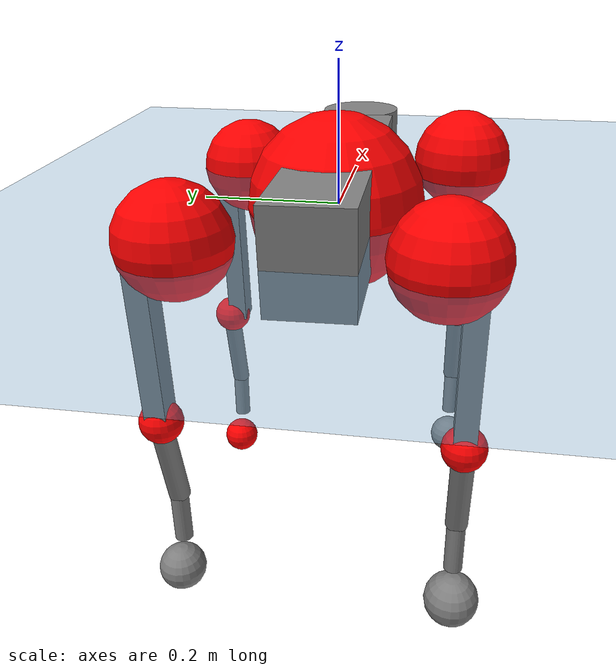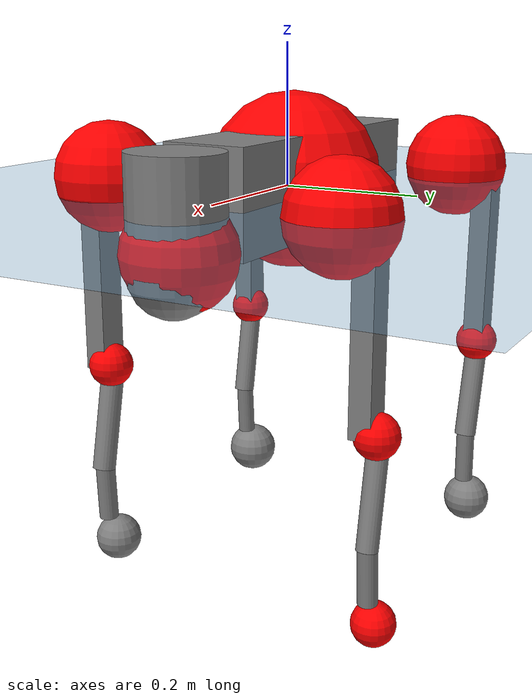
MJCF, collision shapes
<mujoco model="go2">
  <compiler angle="radian" assetdir="assets" balanceinertia="true" inertiafromgeom="false"/>

  <option timestep="0.005" density="1.2" viscosity="2e-05"/>

  <size nkey="1"/>

  <visual>
    <quality shadowsize="8192"/>
    <map shadowclip="0.5"/>
  </visual>

  <default>
    <default class="/">
      <geom contype="0" conaffinity="0" group="1" solref="-1000 -80"/>
      <site size="0.01 0.005 0.005" group="5"/>
      <general forcelimited="true" biastype="affine" gainprm="20" biasprm="0 -20 -0.5"/>
      <default class="go2">
        <joint armature="0.01" damping="0.01" frictionloss="0.2"/>
        <geom condim="1" margin="0.001"/>
        <default class="visual">
          <geom type="mesh" group="2"/>
        </default>
        <default class="collision">
          <geom group="3"/>
          <default class="foot">
            <geom size="0.022 0 0" condim="6" priority="1" friction="0.8 0.02 0.01" solimp="0.015 1 0.022"/>
          </default>
        </default>
        <default class="reward_collision_sphere">
          <geom group="5" rgba="1 0 0 1"/>
        </default>
      </default>
    </default>
  </default>

  <asset>
    <texture type="skybox" colorspace="auto" name="//unnamed_texture_0" builtin="gradient" rgb1="0.95 0.95 0.95" rgb2="0.95 0.95 0.95" width="100" height="600"/>
    <texture type="2d" colorspace="auto" name="texplane" builtin="checker" rgb1="0.345 0.575 0.748" rgb2="0.345 0.575 0.748" markrgb="1 1 1" width="512" height="512"/>
    <material name="MatPlane" class="/" texture="texplane" texuniform="true" texrepeat="2 2" specular="0.9"/>
    <material name="metal" class="/" rgba="0.9 0.95 0.95 1"/>
    <material name="black" class="/" rgba="0 0 0 1"/>
    <material name="white" class="/"/>
    <material name="gray" class="/" rgba="0.671705 0.692426 0.77427 1"/>
    <mesh name="base_0" class="/" file="base_0.obj"/>
    <mesh name="base_1" class="/" file="base_1.obj"/>
    <mesh name="base_2" class="/" file="base_2.obj"/>
    <mesh name="base_3" class="/" file="base_3.obj"/>
    <mesh name="base_4" class="/" file="base_4.obj"/>
    <mesh name="hip_0" class="/" file="hip_0.obj"/>
    <mesh name="hip_1" class="/" file="hip_1.obj"/>
    <mesh name="thigh_0" class="/" file="thigh_0.obj"/>
    <mesh name="thigh_1" class="/" file="thigh_1.obj"/>
    <mesh name="thigh_mirror_0" class="/" file="thigh_mirror_0.obj"/>
    <mesh name="thigh_mirror_1" class="/" file="thigh_mirror_1.obj"/>
    <mesh name="calf_0" class="/" file="calf_0.obj"/>
    <mesh name="calf_1" class="/" file="calf_1.obj"/>
    <mesh name="calf_mirror_0" class="/" file="calf_mirror_0.obj"/>
    <mesh name="calf_mirror_1" class="/" file="calf_mirror_1.obj"/>
    <mesh name="foot" class="/" file="foot.obj"/>
  </asset>

  <worldbody>
    <geom name="floor" class="/" size="100 100 0.125" type="plane" group="0" material="MatPlane"/>
    <light name="toplight_shadow" class="/" pos="0 0 5" dir="0.0990148 0.0990148 -0.990148" type="directional" ambient="0.04 0.04 0.04" diffuse="0.55 0.55 0.55" specular="0.12 0.12 0.12"/>
    <light name="toplight_fill" class="/" pos="0 0 5" dir="0.0990148 0.0990148 -0.990148" type="directional" castshadow="false" ambient="0.04 0.04 0.04" diffuse="0.3 0.3 0.3" specular="0.08 0.08 0.08"/>
    <body name="trunk" childclass="go2" pos="-0.0154448 0.00126105 0.00775208" quat="0.999976 -0.00583246 -0.00111453 0.00369642">
      <inertial pos="0.036724 -0.00742981 -0.00391913" quat="-0.0126824 0.704985 -0.00306447 0.709102" mass="15.4141" diaginertia="0.119654 0.620905 0.0724426"/>
      <joint name="//unnamed_joint_0" type="free" armature="0" damping="0" frictionloss="0"/>
      <geom name="//unnamed_geom_1" class="visual" material="black" mesh="base_0"/>
      <geom name="//unnamed_geom_2" class="visual" material="black" mesh="base_1"/>
      <geom name="//unnamed_geom_3" class="visual" material="black" mesh="base_2"/>
      <geom name="//unnamed_geom_4" class="visual" material="white" mesh="base_3"/>
      <geom name="//unnamed_geom_5" class="visual" material="gray" mesh="base_4"/>
      <geom name="trunk_1" class="collision" size="0.238493 0.0592747 0.0722707" type="box"/>
      <geom name="trunk_2" class="collision" size="0.0633954 0.0570558" pos="0.296895 0 0.0128604" type="cylinder"/>
      <geom name="trunk_3" class="collision" size="0.0595917" pos="0.305229 0 -0.0771625"/>
      <geom name="//unnamed_geom_9" class="reward_collision_sphere" size="0.126791"/>
      <geom name="//unnamed_geom_10" class="reward_collision_sphere" size="0.0760745" pos="0.291686 0 -0.0578719"/>
      <site name="imu" pos="-0.0190359 -0.0433617 -0.0132911" size="0.0126791"/>
      <camera name="track" pos="0 -2.95189 0" quat="0.707107 0.707107 0 0" mode="trackcom"/>
      <camera name="ego_camera" pos="0.325022 0 0.0578719" quat="-0.5 -0.5 0.5 0.5"/>
      <body name="FL_hip" pos="0.201438 0.0736959 -0.00694479" quat="0.999993 -0.00375377 -0.000258984 -0.000265825">
        <inertial pos="-0.00964746 0.0138492 0.00243976" quat="0.504031 0.493036 0.504615 0.498229" mass="1.43889" diaginertia="0.000829602 0.00355034 0.00167794"/>
        <joint name="FL_hip_joint" pos="0 0 0" axis="0.997109 -0.0758729 -0.00422661" stiffness="0.0320423" range="-1.34614 1.08898" armature="0.0134605" damping="0" frictionloss="0.267257"/>
        <geom name="//unnamed_geom_11" class="visual" material="metal" mesh="hip_0"/>
        <geom name="//unnamed_geom_12" class="visual" material="gray" mesh="hip_1"/>
        <geom name="//unnamed_geom_13" class="collision" size="0.0583238 0.0253582" pos="0 0.118076 0" quat="0.707107 0.707107 0 0" type="cylinder"/>
        <geom name="//unnamed_geom_14" class="reward_collision_sphere" size="0.0760745" pos="0 0.103316 0"/>
        <body name="FL_thigh" pos="-0.00807405 0.139261 -0.00882707" quat="0.99998 0.00495661 0.00190398 0.00343359">
          <inertial pos="-0.0146507 -0.0230928 -0.0282356" quat="0.829537 0.0842513 -0.0205778 0.551676" mass="2.70394" diaginertia="0.00746917 0.0457435 0.00281799"/>
          <joint name="FL_thigh_joint" pos="0 0 0" axis="-0.0239015 0.999558 0.0176704" stiffness="0.0786464" range="-1.71947 3.49878" armature="0.0173761" damping="0.00935464" frictionloss="0.330328"/>
          <geom name="//unnamed_geom_15" class="visual" material="metal" mesh="thigh_0"/>
          <geom name="//unnamed_geom_16" class="visual" material="gray" mesh="thigh_1"/>
          <geom name="//unnamed_geom_17" class="collision" size="0.135032 0.0155319 0.0215544" pos="0 0 -0.136963" quat="0.707107 0 0.707107 0" type="box"/>
          <body name="FL_calf" pos="-0.00380879 0.01394 -0.270201" quat="0.999988 0.00342106 0.00339112 4.19651e-05">
            <inertial pos="0.0187354 -0.00163385 -0.192079" quat="0.687294 -0.00264848 -0.00893917 0.726319" mass="0.471603" diaginertia="0.00163617 0.00721334 0.000139993"/>
            <joint name="FL_calf_joint" pos="0 0 0" axis="0.0304216 0.999536 0.00128197" range="-2.44659 -0.857286" armature="0.00784436" damping="0.0735636" frictionloss="0.14702"/>
            <geom name="//unnamed_geom_18" class="visual" material="gray" mesh="calf_0"/>
            <geom name="//unnamed_geom_19" class="visual" material="black" mesh="calf_1"/>
            <geom name="FL_calf0" class="collision" size="0.0152149 0.0760745" pos="0.00833389 0 -0.0771625" quat="0.994493 0 -0.104807 0" type="cylinder"/>
            <geom name="//unnamed_geom_21" class="collision" size="0.013947 0.041207" pos="0.0208347 0 -0.190334" quat="0.999688 0 0.0249974 0" type="cylinder"/>
            <geom name="//unnamed_geom_22" class="visual" pos="0 0 -0.273927" quat="1 0 0 0" material="black" mesh="foot"/>
            <geom name="FL_foot" class="foot" size="0.0205748" pos="-0.00208347 0 -0.273927"/>
            <geom name="//unnamed_geom_24" class="reward_collision_sphere" size="0.0316977"/>
            <geom name="//unnamed_geom_25" class="reward_collision_sphere" size="0.0316977" pos="-0.00208347 0 -0.273927"/>
            <site name="FL_foot" class="foot" pos="-0.00208347 0 -0.273927" size="0.0126791"/>
          </body>
        </body>
      </body>
      <body name="FR_hip" pos="0.199033 -0.0738217 0.0141014" quat="0.999983 0.00130571 -0.00125503 -0.00546777">
        <inertial pos="-0.0139499 0.0102702 -0.00140906" quat="0.510024 0.531558 0.445595 0.508691" mass="1.39288" diaginertia="0.00137411 0.00466107 0.00210816"/>
        <joint name="FR_hip_joint" pos="0 0 0" axis="0.999097 -0.0279047 -0.0320263" stiffness="0.022541" range="-1.16585 1.06541" armature="0.00961578" damping="0.000270604" frictionloss="0.413298"/>
        <geom name="//unnamed_geom_26" class="visual" pos="0 1.65436e-09 7.09589e-08" quat="4.63268e-05 1 0 0" material="metal" mesh="hip_0"/>
        <geom name="//unnamed_geom_27" class="visual" pos="0 2.68192e-09 -1.75509e-07" quat="4.63268e-05 1 0 0" material="gray" mesh="hip_1"/>
        <geom name="//unnamed_geom_28" class="collision" size="0.0583238 0.0253582" pos="0 -0.118076 0" quat="0.707107 0.707107 0 0" type="cylinder"/>
        <geom name="//unnamed_geom_29" class="reward_collision_sphere" size="0.0760745" pos="0 -0.103316 0"/>
        <body name="FR_thigh" pos="-0.000121217 -0.125722 -0.00315338" quat="1 -8.61668e-05 -2.27815e-05 -0.000163917">
          <inertial pos="-0.012699 0.0442968 -0.0402718" quat="0.534598 -0.0329214 0.129607 0.83446" mass="2.27018" diaginertia="0.00819118 0.048172 0.00287236"/>
          <joint name="FR_thigh_joint" pos="0 0 0" axis="0.00310292 -0.999995 -0.000289638" stiffness="0.0450194" range="-3.44337 1.33109" armature="0.0119993" damping="0.0291427" frictionloss="0.160478"/>
          <geom name="//unnamed_geom_30" class="visual" material="metal" mesh="thigh_mirror_0"/>
          <geom name="//unnamed_geom_31" class="visual" material="gray" mesh="thigh_mirror_1"/>
          <geom name="//unnamed_geom_32" class="collision" size="0.135032 0.0155319 0.0215544" pos="0 0 -0.136963" quat="0.707107 0 0.707107 0" type="box"/>
          <body name="FR_calf" pos="0.00216584 0.0118784 -0.268192" quat="1 -0.000306526 -0.000242702 0.000576049">
            <inertial pos="0.00585501 -0.000148319 -0.181679" quat="0.681812 -0.0203221 0.0599197 0.728786" mass="0.500988" diaginertia="0.00182253 0.0104155 0.000214485"/>
            <joint name="FR_calf_joint" pos="0 0 0" axis="0.0467438 -0.99737 -0.0553936" stiffness="0.0640831" range="0.819634 2.5093" armature="0.0165527" damping="0" frictionloss="0.339776"/>
            <geom name="//unnamed_geom_33" class="visual" material="gray" mesh="calf_mirror_0"/>
            <geom name="//unnamed_geom_34" class="visual" material="black" mesh="calf_mirror_1"/>
            <geom name="FR_calf0" class="collision" size="0.0164828 0.0760745" pos="0.0104174 0 -0.0771625" quat="0.995004 0 -0.0998334 0" type="cylinder"/>
            <geom name="//unnamed_geom_36" class="collision" size="0.013947 0.041207" pos="0.0208347 0 -0.190334" quat="0.999688 0 0.0249974 0" type="cylinder"/>
            <geom name="//unnamed_geom_37" class="visual" pos="0 0 -0.273927" quat="1 0 0 0" material="black" mesh="foot"/>
            <geom name="FR_foot" class="foot" size="0.0333439" pos="-0.00208347 0 -0.273927"/>
            <geom name="//unnamed_geom_39" class="reward_collision_sphere" size="0.0316977"/>
            <geom name="//unnamed_geom_40" class="reward_collision_sphere" size="0.0316977" pos="-0.00208347 0 -0.273927"/>
            <site name="FR_foot" class="foot" pos="-0.00208347 0 -0.273927" size="0.0126791"/>
          </body>
        </body>
      </body>
      <body name="RL_hip" pos="-0.202093 0.0695694 0.0111805" quat="1 -0.000150593 0.000339332 0.000388982">
        <inertial pos="-0.000836334 -0.0116297 0.0109442" quat="0.505952 0.556928 0.482508 0.448364" mass="1.07975" diaginertia="0.00100986 0.00397588 0.0013315"/>
        <joint name="RL_hip_joint" pos="0 0 0" axis="-0.999998 -0.00144396 0.00117153" range="-0.99595 1.23206" armature="0.0197799" damping="0.0300141" frictionloss="0.0847645"/>
        <geom name="//unnamed_geom_41" class="visual" pos="2.12829e-09 0 4.17195e-07" quat="4.63268e-05 0 1 0" material="metal" mesh="hip_0"/>
        <geom name="//unnamed_geom_42" class="visual" pos="3.45022e-09 0 3.69992e-07" quat="4.63268e-05 0 1 0" material="gray" mesh="hip_1"/>
        <geom name="//unnamed_geom_43" class="collision" size="0.0583238 0.0253582" pos="0 0.118076 0" quat="0.707107 0.707107 0 0" type="cylinder"/>
        <geom name="//unnamed_geom_44" class="reward_collision_sphere" size="0.0760745" pos="0 0.103316 0"/>
        <body name="RL_thigh" pos="0.000130097 0.153887 -0.013264" quat="0.999999 -0.000142824 0.00104635 0.000621483">
          <inertial pos="-0.00295679 -0.0342523 -0.045218" quat="0.824764 0.0975429 -0.0474605 0.554975" mass="1.80201" diaginertia="0.00679522 0.0368918 0.00253835"/>
          <joint name="RL_thigh_joint" pos="0 0 0" axis="-0.0426593 0.998898 -0.0195574" range="-0.544979 4.50988" armature="0.00603107" damping="0.0558205" frictionloss="0.263248"/>
          <geom name="//unnamed_geom_45" class="visual" material="metal" mesh="thigh_0"/>
          <geom name="//unnamed_geom_46" class="visual" material="gray" mesh="thigh_1"/>
          <geom name="//unnamed_geom_47" class="collision" size="0.135032 0.0155319 0.0215544" pos="0 0 -0.136963" quat="0.707107 0 0.707107 0" type="box"/>
          <body name="RL_calf" pos="0.000975563 0.000228061 -0.259873" quat="0.999998 -0.00187911 -0.000206509 -0.000165795">
            <inertial pos="0.0126518 -0.0159266 -0.183126" quat="0.6913 0.012227 -0.0356197 0.721586" mass="0.456729" diaginertia="0.00187841 0.00938769 0.000206125"/>
            <joint name="RL_calf_joint" pos="0 0 0" axis="0.0155357 0.999879 0.00105932" stiffness="0.0776163" range="-2.74152 -0.986508" armature="0.00750818" damping="0.0549288" frictionloss="0.0670227"/>
            <geom name="//unnamed_geom_48" class="visual" material="gray" mesh="calf_0"/>
            <geom name="//unnamed_geom_49" class="visual" material="black" mesh="calf_1"/>
            <geom name="RL_calf0" class="collision" size="0.0164828 0.0760745" pos="0.0104174 0 -0.0771625" quat="0.995004 0 -0.0998334 0" type="cylinder"/>
            <geom name="//unnamed_geom_51" class="collision" size="0.013947 0.041207" pos="0.0208347 0 -0.190334" quat="0.999688 0 0.0249974 0" type="cylinder"/>
            <geom name="//unnamed_geom_52" class="visual" pos="0 0 -0.273927" quat="1 0 0 0" material="black" mesh="foot"/>
            <geom name="RL_foot" class="foot" size="0.0363859" pos="-0.00208347 0 -0.273927"/>
            <geom name="//unnamed_geom_54" class="reward_collision_sphere" size="0.0316977"/>
            <geom name="//unnamed_geom_55" class="reward_collision_sphere" size="0.0316977" pos="-0.00208347 0 -0.273927"/>
            <site name="RL_foot" class="foot" pos="-0.00208347 0 -0.273927" size="0.0126791"/>
          </body>
        </body>
      </body>
      <body name="RR_hip" pos="-0.207478 -0.0603693 0.00304755" quat="0.999974 0.00179513 0.00699633 0.000203971">
        <inertial pos="-0.0091789 -0.0139784 0.0145712" quat="0.514674 0.494342 0.525577 0.463147" mass="1.41529" diaginertia="0.00109678 0.0042496 0.00174539"/>
        <joint name="RR_hip_joint" pos="0 0 0" axis="-0.99712 -0.0689401 -0.0315993" range="-1.16975 0.989073" armature="0.0180026" damping="0.0250476" frictionloss="0.209029"/>
        <geom name="//unnamed_geom_56" class="visual" pos="-2.11326e-09 1.65436e-09 3.46236e-07" quat="2.14617e-09 4.63268e-05 4.63268e-05 -1" material="metal" mesh="hip_0"/>
        <geom name="//unnamed_geom_57" class="visual" pos="-3.4874e-09 2.68191e-09 5.45501e-07" quat="2.14617e-09 4.63268e-05 4.63268e-05 -1" material="gray" mesh="hip_1"/>
        <geom name="//unnamed_geom_58" class="collision" size="0.0583238 0.0253582" pos="0 -0.118076 0" quat="0.707107 0.707107 0 0" type="cylinder"/>
        <geom name="//unnamed_geom_59" class="reward_collision_sphere" size="0.0760745" pos="0 -0.103316 0"/>
        <body name="RR_thigh" pos="0.00474566 -0.139219 0.0148535" quat="1 0.000410384 -0.000167115 0.000511047">
          <inertial pos="-0.00150999 0.033689 -0.0414272" quat="0.550094 -0.0191186 0.0841568 0.830631" mass="2.74311" diaginertia="0.00764624 0.0360943 0.00315482"/>
          <joint name="RR_thigh_joint" pos="0 0 0" axis="0.00714261 -0.999839 0.0164333" range="-4.51503 0.268422" armature="0.0139216" damping="0" frictionloss="0.208263"/>
          <geom name="//unnamed_geom_60" class="visual" material="metal" mesh="thigh_mirror_0"/>
          <geom name="//unnamed_geom_61" class="visual" material="gray" mesh="thigh_mirror_1"/>
          <geom name="//unnamed_geom_62" class="collision" size="0.135032 0.0155319 0.0215544" pos="0 0 -0.136963" quat="0.707107 0 0.707107 0" type="box"/>
          <body name="RR_calf" pos="-0.00272104 -0.000253969 -0.28186" quat="1 0.000489506 -0.000397611 1.19378e-05">
            <inertial pos="0.0174945 -0.00138825 -0.181877" quat="0.727085 -0.0122586 -0.0237903 0.686025" mass="0.49326" diaginertia="0.00165837 0.0101009 0.000156443"/>
            <joint name="RR_calf_joint" pos="0 0 0" axis="-0.0452096 -0.997698 0.0505371" range="0.961853 2.71293" armature="0.0157264" damping="0" frictionloss="0.314885"/>
            <geom name="//unnamed_geom_63" class="visual" material="gray" mesh="calf_mirror_0"/>
            <geom name="//unnamed_geom_64" class="visual" material="black" mesh="calf_mirror_1"/>
            <geom name="RR_calf0" class="collision" size="0.0164828 0.0760745" pos="0.0104174 0 -0.0771625" quat="0.995004 0 -0.0998334 0" type="cylinder"/>
            <geom name="//unnamed_geom_66" class="collision" size="0.013947 0.041207" pos="0.0208347 0 -0.190334" quat="0.999688 0 0.0249974 0" type="cylinder"/>
            <geom name="//unnamed_geom_67" class="visual" pos="0 0 -0.273927" quat="1 0 0 0" material="black" mesh="foot"/>
            <geom name="RR_foot" class="foot" size="0.0411171" pos="-0.00208347 0 -0.273927"/>
            <geom name="//unnamed_geom_69" class="reward_collision_sphere" size="0.0316977"/>
            <geom name="//unnamed_geom_70" class="reward_collision_sphere" size="0.0316977" pos="-0.00208347 0 -0.273927"/>
            <site name="RR_foot" class="foot" pos="-0.00208347 0 -0.273927" size="0.0126791"/>
          </body>
        </body>
      </body>
    </body>
  </worldbody>

  <contact>
    <pair class="/" geom1="floor" geom2="FL_foot" name="//unnamed_contact_0"/>
    <pair class="/" geom1="floor" geom2="FR_foot" name="//unnamed_contact_1"/>
    <pair class="/" geom1="floor" geom2="RL_foot" name="//unnamed_contact_2"/>
    <pair class="/" geom1="floor" geom2="RR_foot" name="//unnamed_contact_3"/>
  </contact>

  <actuator>
    <general name="FL_hip" class="/" joint="FL_hip_joint" forcerange="-28.8857 28.8857" gainprm="19.6655" biasprm="0 -19.6655 -0.799406"/>
    <general name="FL_thigh" class="/" joint="FL_thigh_joint" forcerange="-39.6158 39.6158" gainprm="19.6655" biasprm="0 -19.6655 -0.799406"/>
    <general name="FL_calf" class="/" joint="FL_calf_joint" forcerange="-62.7728 62.7728" gainprm="19.6655" biasprm="0 -19.6655 -0.799406"/>
    <general name="FR_hip" class="/" joint="FR_hip_joint" forcerange="-30.7455 30.7455" gainprm="19.6655" biasprm="0 -19.6655 -0.799406"/>
    <general name="FR_thigh" class="/" joint="FR_thigh_joint" forcerange="-20.6133 20.6133" gainprm="19.6655" biasprm="0 -19.6655 -0.799406"/>
    <general name="FR_calf" class="/" joint="FR_calf_joint" forcerange="-55.83 55.83" gainprm="19.6655" biasprm="0 -19.6655 -0.799406"/>
    <general name="RL_hip" class="/" joint="RL_hip_joint" forcerange="-13.7953 13.7953" gainprm="19.6655" biasprm="0 -19.6655 -0.799406"/>
    <general name="RL_thigh" class="/" joint="RL_thigh_joint" forcerange="-39.1841 39.1841" gainprm="19.6655" biasprm="0 -19.6655 -0.799406"/>
    <general name="RL_calf" class="/" joint="RL_calf_joint" forcerange="-88.7613 88.7613" gainprm="19.6655" biasprm="0 -19.6655 -0.799406"/>
    <general name="RR_hip" class="/" joint="RR_hip_joint" forcerange="-41.5239 41.5239" gainprm="19.6655" biasprm="0 -19.6655 -0.799406"/>
    <general name="RR_thigh" class="/" joint="RR_thigh_joint" forcerange="-14.2859 14.2859" gainprm="19.6655" biasprm="0 -19.6655 -0.799406"/>
    <general name="RR_calf" class="/" joint="RR_calf_joint" forcerange="-52.1961 52.1961" gainprm="19.6655" biasprm="0 -19.6655 -0.799406"/>
  </actuator>

  <sensor>
    <gyro site="imu" name="imu_angular_velocity"/>
    <velocimeter site="imu" name="imu_linear_velocity"/>
    <framelinvel objtype="site" objname="FL_foot" name="FL_foot_global_linear_velocity"/>
    <framelinvel objtype="site" objname="FR_foot" name="FR_foot_global_linear_velocity"/>
    <framelinvel objtype="site" objname="RL_foot" name="RL_foot_global_linear_velocity"/>
    <framelinvel objtype="site" objname="RR_foot" name="RR_foot_global_linear_velocity"/>
  </sensor>

  <keyframe>
    <key name="home" qpos="0 0 0.325 1 0 0 0 0.1 0.8 -1.5 -0.1 -0.8 1.5 -0.1 0.8 -1.5 0.1 -0.8 1.5"/>
  </keyframe>
</mujoco>
